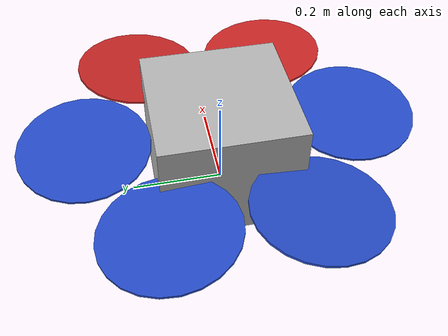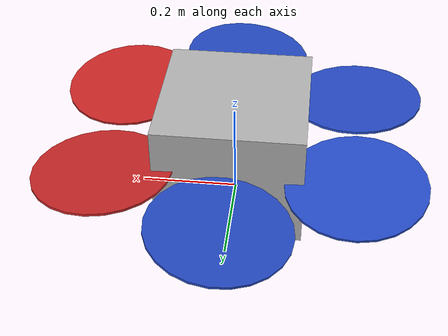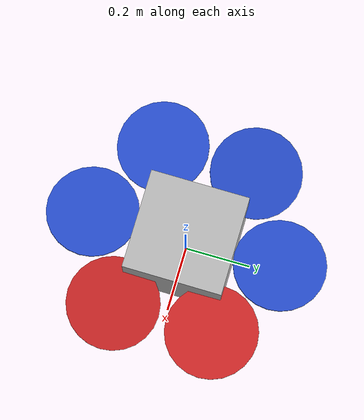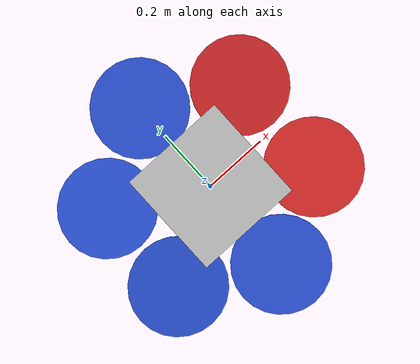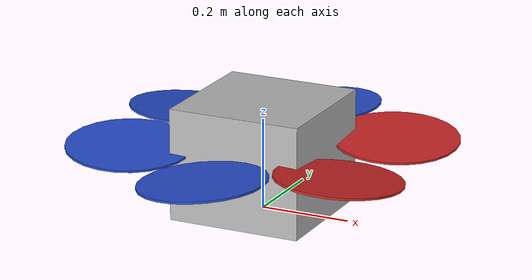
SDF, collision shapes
<?xml version="1.0"?>
<sdf version="1.6">
    <model name="X4">
        <pose>0 0 0.121078 0 0 0</pose>
        <link name="base_link">
            <pose frame="">0 0 0 0 -0 0</pose>
            <inertial>
                <pose frame="">0 0 0 0 -0 0</pose>
                <mass>3.42</mass>
                <inertia>
                    <ixx>0.075</ixx>
                    <ixy>0</ixy>
                    <ixz>0</ixz>
                    <iyy>0.075</iyy>
                    <iyz>0</iyz>
                    <izz>0.148916</izz>
                </inertia>
            </inertial>
            <collision name="base_link_inertia_collision">
                <pose frame="">0 0 0 0 -0 0</pose>
                <geometry>
                    <box>
                        <size>0.3 0.3 0.25</size>
                    </box>
                </geometry>
            </collision>
            <visual name="base_link_inertia_visual">
                <pose frame="">0 0 0 0 -0 0</pose>
                <geometry>
                    <mesh>
                        <scale>1 1 1</scale>
                        <uri>meshes/x4.dae</uri>
                    </mesh>
                </geometry>
            </visual>
            <visual name="marker_visual_1">
                <pose frame="">-0.1 0 0.077 0 -0.1 0</pose>
                <geometry>
                    <mesh>
                        <scale>1 1 1</scale>
                        <uri>meshes/led.dae</uri>
                    </mesh>
                </geometry>
            </visual>
            <visual name="marker_visual_2">
                <pose frame="">-0.09 0.059 0.059 -0.785397 -0 0.2</pose>
                <geometry>
                    <mesh>
                        <scale>1 1 1</scale>
                        <uri>meshes/led.dae</uri>
                    </mesh>
                </geometry>
            </visual>
            <visual name="marker_visual_3">
                <pose frame="">-0.09 -0.059 0.059 0.785397 -0 -0.2</pose>
                <geometry>
                    <mesh>
                        <scale>1 1 1</scale>
                        <uri>meshes/led.dae</uri>
                    </mesh>
                </geometry>
            </visual>
            <visual name="downward_flashlight_visual">
                <pose frame="">-0.043704 0 0.102914 -0.2 0.000158 -1.57002</pose>
                <geometry>
                    <mesh>
                        <scale>0.01 0.01 0.01</scale>
                        <uri>meshes/spotlight.dae</uri>
                    </mesh>
                </geometry>
            </visual>
            <visual name="left_flashlight_visual">
                <pose frame="">-0.071985 0.090826 0.066102 0.06 -4.8e-05 -1.27</pose>
                <geometry>
                    <mesh>
                        <scale>0.01 0.01 0.01</scale>
                        <uri>meshes/spotlight.dae</uri>
                    </mesh>
                </geometry>
            </visual>
            <visual name="right_flashlight_visual">
                <pose frame="">-0.071985 -0.090826 0.066102 0.06 -4.8e-05 -1.87</pose>
                <geometry>
                    <mesh>
                        <scale>0.01 0.01 0.01</scale>
                        <uri>meshes/spotlight.dae</uri>
                    </mesh>
                </geometry>
            </visual>
            <light name="right_light_source" type="spot">
                <pose frame="">-0.0 -0.11 0.07 3.131592653589795 -1.5107899999999999 2.841592653589791</pose>
                <attenuation>
                    <range>15</range>
                    <linear>0</linear>
                    <constant>0.1</constant>
                    <quadratic>0.01</quadratic>
                </attenuation>
                <diffuse>0.8 0.8 0.5 1</diffuse>
                <specular>0.8 0.8 0.5 1</specular>
                <spot>
                    <inner_angle>1</inner_angle>
                    <outer_angle>1.1</outer_angle>
                    <falloff>1</falloff>
                </spot>
                <direction>0 0 -1</direction>
                <cast_shadows>1</cast_shadows>
            </light>
            <light name="downward_flashlight_source" type="spot">
                <pose frame="">0.03 0 0.09 -0.01 -1.3708026535897933 0</pose>
                <attenuation>
                    <range>15</range>
                    <linear>0</linear>
                    <constant>0.1</constant>
                    <quadratic>0.01</quadratic>
                </attenuation>
                <diffuse>0.8 0.8 0.5 1</diffuse>
                <specular>0.8 0.8 0.5 1</specular>
                <spot>
                    <inner_angle>1</inner_angle>
                    <outer_angle>1.1</outer_angle>
                    <falloff>1</falloff>
                </spot>
                <direction>0 0 -1</direction>
                <cast_shadows>1</cast_shadows>
            </light>
            <light name="left_flashlight_source" type="spot">
                <pose frame="">-0.0 0.11 0.07 3.131592653589795 -1.5107899999999999 -2.841592653589791</pose>
                <attenuation>
                    <range>15</range>
                    <linear>0</linear>
                    <constant>0.1</constant>
                    <quadratic>0.01</quadratic>
                </attenuation>
                <diffuse>0.8 0.8 0.5 1</diffuse>
                <specular>0.8 0.8 0.5 1</specular>
                <spot>
                    <inner_angle>1</inner_angle>
                    <outer_angle>1.1</outer_angle>
                    <falloff>1</falloff>
                </spot>
                <direction>0 0 -1</direction>
                <cast_shadows>1</cast_shadows>
            </light>
            <sensor name="imu_sensor" type="imu">
                <always_on>1</always_on>
                <update_rate>250</update_rate>
                <imu>
                    <enable_orientation>0</enable_orientation>
                    <angular_velocity>
                        <x>
                            <noise type="gaussian">
                                <mean>0</mean>
                                <stddev>0.009</stddev>
                                <bias_mean>0.00075</bias_mean>
                                <bias_stddev>0.005</bias_stddev>
                                <dynamic_bias_stddev>0.00002</dynamic_bias_stddev>
                                <dynamic_bias_correlation_time>400.0</dynamic_bias_correlation_time>
                                <precision>0.00025</precision>
                            </noise>
                        </x>
                        <y>
                            <noise type="gaussian">
                                <mean>0</mean>
                                <stddev>0.009</stddev>
                                <bias_mean>0.00075</bias_mean>
                                <bias_stddev>0.005</bias_stddev>
                                <dynamic_bias_stddev>0.00002</dynamic_bias_stddev>
                                <dynamic_bias_correlation_time>400.0</dynamic_bias_correlation_time>
                                <precision>0.00025</precision>
                            </noise>
                        </y>
                        <z>
                            <noise type="gaussian">
                                <mean>0</mean>
                                <stddev>0.009</stddev>
                                <bias_mean>0.00075</bias_mean>
                                <bias_stddev>0.005</bias_stddev>
                                <dynamic_bias_stddev>0.00002</dynamic_bias_stddev>
                                <dynamic_bias_correlation_time>400.0</dynamic_bias_correlation_time>
                                <precision>0.00025</precision>
                            </noise>
                        </z>
                    </angular_velocity>
                    <linear_acceleration>
                        <x>
                            <noise type="gaussian">
                                <mean>0</mean>
                                <stddev>0.021</stddev>
                                <bias_mean>0.05</bias_mean>
                                <bias_stddev>0.0075</bias_stddev>
                                <dynamic_bias_stddev>0.000375</dynamic_bias_stddev>
                                <dynamic_bias_correlation_time>175.0</dynamic_bias_correlation_time>
                                <precision>0.005</precision>
                            </noise>
                        </x>
                        <y>
                            <noise type="gaussian">
                                <mean>0</mean>
                                <stddev>0.021</stddev>
                                <bias_mean>0.05</bias_mean>
                                <bias_stddev>0.0075</bias_stddev>
                                <dynamic_bias_stddev>0.000375</dynamic_bias_stddev>
                                <dynamic_bias_correlation_time>175.0</dynamic_bias_correlation_time>
                                <precision>0.005</precision>
                            </noise>
                        </y>
                        <z>
                            <noise type="gaussian">
                                <mean>0</mean>
                                <stddev>0.021</stddev>
                                <bias_mean>0.05</bias_mean>
                                <bias_stddev>0.0075</bias_stddev>
                                <dynamic_bias_stddev>0.000375</dynamic_bias_stddev>
                                <dynamic_bias_correlation_time>175.0</dynamic_bias_correlation_time>
                                <precision>0.005</precision>
                            </noise>
                        </z>
                    </linear_acceleration>
                </imu>
            </sensor>
            <sensor name="air_pressure" type="air_pressure">
                <always_on>1</always_on>
                <update_rate>20</update_rate>
                <air_pressure>
                    <reference_altitude>0</reference_altitude>
                    <noise type="gaussian">
                        <mean>0.00000008</mean>
                    </noise>
                </air_pressure>
            </sensor>
            <sensor name="magnetometer" type="magnetometer">
                <always_on>1</always_on>
                <update_rate>20</update_rate>
                <magnetometer>
                    <x>
                        <noise type="gaussian">
                            <mean>0.000000080</mean>
                            <bias_mean>0.000000400</bias_mean>
                        </noise>
                    </x>
                    <y>
                        <noise type="gaussian">
                            <mean>0.000000080</mean>
                            <bias_mean>0.000000400</bias_mean>
                        </noise>
                    </y>
                    <z>
                        <noise type="gaussian">
                            <mean>0.000000080</mean>
                            <bias_mean>0.000000400</bias_mean>
                        </noise>
                    </z>
                </magnetometer>
            </sensor>
            <visual name="camera_mount_base_visual">
                <pose>0.05 0 -0.030 0 0.0 0</pose>
                <geometry>
                    <box>
                        <size>0.06 0.06 0.006</size>
                    </box>
                </geometry>
            </visual>
            <visual name="camera_mount_arm_visual">
                <pose>0.08 0 -0.040 0 0.0 0</pose>
                <geometry>
                    <cylinder>
                        <radius>0.005</radius>
                        <length>0.08</length>
                    </cylinder>
                </geometry>
            </visual>
            <visual name="camera_mount_arm2_visual">
                <pose>0.08 0 -0.08 0 1.57 0</pose>
                <geometry>
                    <cylinder>
                        <radius>0.01</radius>
                        <length>0.025</length>
                    </cylinder>
                </geometry>
            </visual>
            <visual name="camera_visual">
                <pose>0.1 0 -0.08 0 0 0</pose>
                <geometry>
                    <box>
                        <size>0.02 0.025 0.025</size>
                    </box>
                </geometry>
            </visual>
            <sensor name="camera_front" type="camera">
                <pose>0.1 0 -0.08 0 0 0</pose>
                <always_on>1</always_on>
                <update_rate>20</update_rate>
                <camera name="camera_front">
                    <horizontal_fov>2</horizontal_fov>
                    <lens>
                        <intrinsics>
                            <!-- fx = fy = width / ( 2 * tan (hfov / 2 ) ) -->
                            <fx>1108.5</fx>
                            <fy>1108.5</fy>
                            <!-- cx = ( width + 1 ) / 2 -->
                            <cx>640.5</cx>
                            <!-- cy = ( height + 1 ) / 2 -->
                            <cy>480.5</cy>
                            <s>0</s>
                        </intrinsics>
                    </lens>
                    <distortion>
                        <k1>0.0</k1>
                        <k2>0.0</k2>
                        <k3>0.0</k3>
                        <p1>0.0</p1>
                        <p2>0.0</p2>
                        <center>0.5 0.5</center>
                    </distortion>
                    <image>
                        <width>1280</width>
                        <height>960</height>
                        <format>R8G8B8</format>
                    </image>
                    <clip>
                        <near>0.02</near>
                        <far>300</far>
                    </clip>
                    <noise>
                        <type>gaussian</type>
                        <mean>0</mean>
                        <stddev>0.007</stddev>
                    </noise>
                </camera>
            </sensor>
        </link>
        <link name="rotor_0">
            <pose frame="">0.247 0.1506 0.028 0.087267 0 0.523599</pose>
            <inertial>
                <pose frame="">0 0 0 0 -0 0</pose>
                <mass>0.005</mass>
                <inertia>
                    <ixx>9.75e-07</ixx>
                    <ixy>0</ixy>
                    <ixz>0</ixz>
                    <iyy>8.13545e-05</iyy>
                    <iyz>0</iyz>
                    <izz>8.22545e-05</izz>
                </inertia>
            </inertial>
            <collision name="rotor_0_collision">
                <pose frame="">0 0 0 0 -0 0</pose>
                <geometry>
                    <cylinder>
                        <length>0.005</length>
                        <radius>0.1397</radius>
                    </cylinder>
                </geometry>
                <surface>
                    <contact>
                        <ode/>
                    </contact>
                    <friction>
                        <ode/>
                    </friction>
                </surface>
            </collision>
            <visual name="rotor_0_visual">
                <pose frame="">0 0 0 0 -0 0</pose>
                <geometry>
                    <mesh>
                        <scale>1 1 1</scale>
                        <uri>meshes/neo11_propeller_ccw.dae</uri>
                    </mesh>
                </geometry>
                <material>
                    <diffuse>1 0 0 1</diffuse>
                    <script>
                        <name>Gazebo/Red</name>
                        <uri>file://media/materials/scripts/gazebo.material</uri>
                    </script>
                </material>
                <cast_shadows>0</cast_shadows>
            </visual>
            <gravity>1</gravity>
            <velocity_decay/>
        </link>
        <joint name="rotor_0_joint" type="revolute">
            <child>rotor_0</child>
            <parent>base_link</parent>
            <axis>
                <xyz>0.043578 -0.075479 0.996195</xyz>
                <limit>
                    <lower>-1e+16</lower>
                    <upper>1e+16</upper>
                </limit>
                <dynamics>
                    <spring_reference>0</spring_reference>
                    <spring_stiffness>0</spring_stiffness>
                </dynamics>
                <use_parent_model_frame>1</use_parent_model_frame>
            </axis>
        </joint>
        <link name="rotor_1">
            <pose frame="">-0.00067 0.28929 0.028 0 -0.087267 0</pose>
            <inertial>
                <pose frame="">0 0 0 0 -0 0</pose>
                <mass>0.005</mass>
                <inertia>
                    <ixx>9.75e-07</ixx>
                    <ixy>0</ixy>
                    <ixz>0</ixz>
                    <iyy>8.13545e-05</iyy>
                    <iyz>0</iyz>
                    <izz>8.22545e-05</izz>
                </inertia>
            </inertial>
            <collision name="rotor_1_collision">
                <pose frame="">0 0 0 0 -0 0</pose>
                <geometry>
                    <cylinder>
                        <length>0.005</length>
                        <radius>0.1397</radius>
                    </cylinder>
                </geometry>
                <surface>
                    <contact>
                        <ode/>
                    </contact>
                    <friction>
                        <ode/>
                    </friction>
                </surface>
            </collision>
            <visual name="rotor_1_visual">
                <pose frame="">0 0 0 0 -0 0</pose>
                <geometry>
                    <mesh>
                        <scale>1 1 1</scale>
                        <uri>meshes/neo11_propeller_cw.dae</uri>
                    </mesh>
                </geometry>
                <material>
                    <diffuse>0 0 1 1</diffuse>
                    <script>
                        <name>Gazebo/Blue</name>
                        <uri>file://media/materials/scripts/gazebo.material</uri>
                    </script>
                </material>
                <cast_shadows>0</cast_shadows>
            </visual>
            <gravity>1</gravity>
            <velocity_decay/>
        </link>
        <joint name="rotor_1_joint" type="revolute">
            <child>rotor_1</child>
            <parent>base_link</parent>
            <axis>
                <xyz>-0.087156 0 0.996195</xyz>
                <limit>
                    <lower>-1e+16</lower>
                    <upper>1e+16</upper>
                </limit>
                <dynamics>
                    <spring_reference>0</spring_reference>
                    <spring_stiffness>0</spring_stiffness>
                </dynamics>
                <use_parent_model_frame>1</use_parent_model_frame>
            </axis>
        </joint>
        <link name="rotor_2">
            <pose frame="">-0.2501 0.1454 0.028 0.087267 -0 2.61799</pose>
            <inertial>
                <pose frame="">0 0 0 0 -0 0</pose>
                <mass>0.005</mass>
                <inertia>
                    <ixx>9.75e-07</ixx>
                    <ixy>0</ixy>
                    <ixz>0</ixz>
                    <iyy>8.13545e-05</iyy>
                    <iyz>0</iyz>
                    <izz>8.22545e-05</izz>
                </inertia>
            </inertial>
            <collision name="rotor_2_collision">
                <pose frame="">0 0 0 0 -0 0</pose>
                <geometry>
                    <cylinder>
                        <length>0.005</length>
                        <radius>0.1397</radius>
                    </cylinder>
                </geometry>
                <surface>
                    <contact>
                        <ode/>
                    </contact>
                    <friction>
                        <ode/>
                    </friction>
                </surface>
            </collision>
            <visual name="rotor_2_visual">
                <pose frame="">0 0 0 0 -0 0</pose>
                <geometry>
                    <mesh>
                        <scale>1 1 1</scale>
                        <uri>meshes/neo11_propeller_ccw.dae</uri>
                    </mesh>
                </geometry>
                <material>
                    <diffuse>0 0 1 1</diffuse>
                    <script>
                        <name>Gazebo/Blue</name>
                        <uri>file://media/materials/scripts/gazebo.material</uri>
                    </script>
                </material>
                <cast_shadows>0</cast_shadows>
            </visual>
            <gravity>1</gravity>
            <velocity_decay/>
        </link>
        <joint name="rotor_2_joint" type="revolute">
            <child>rotor_2</child>
            <parent>base_link</parent>
            <axis>
                <xyz>0.043578 0.075479 0.996195</xyz>
                <limit>
                    <lower>-1e+16</lower>
                    <upper>1e+16</upper>
                </limit>
                <dynamics>
                    <spring_reference>0</spring_reference>
                    <spring_stiffness>0</spring_stiffness>
                </dynamics>
                <use_parent_model_frame>1</use_parent_model_frame>
            </axis>
        </joint>
        <link name="rotor_3">
            <pose frame="">-0.2501 -0.1454 0.028 -0.087267 -0 -2.61799</pose>
            <inertial>
                <pose frame="">0 0 0 0 -0 0</pose>
                <mass>0.005</mass>
                <inertia>
                    <ixx>9.75e-07</ixx>
                    <ixy>0</ixy>
                    <ixz>0</ixz>
                    <iyy>8.13545e-05</iyy>
                    <iyz>0</iyz>
                    <izz>8.22545e-05</izz>
                </inertia>
            </inertial>
            <collision name="rotor_3_collision">
                <pose frame="">0 0 0 0 -0 0</pose>
                <geometry>
                    <cylinder>
                        <length>0.005</length>
                        <radius>0.1397</radius>
                    </cylinder>
                </geometry>
                <surface>
                    <contact>
                        <ode/>
                    </contact>
                    <friction>
                        <ode/>
                    </friction>
                </surface>
            </collision>
            <visual name="rotor_3_visual">
                <pose frame="">0 0 0 0 -0 0</pose>
                <geometry>
                    <mesh>
                        <scale>1 1 1</scale>
                        <uri>meshes/neo11_propeller_cw.dae</uri>
                    </mesh>
                </geometry>
                <material>
                    <diffuse>0 0 1 1</diffuse>
                    <script>
                        <name>Gazebo/Blue</name>
                        <uri>file://media/materials/scripts/gazebo.material</uri>
                    </script>
                </material>
                <cast_shadows>0</cast_shadows>
            </visual>
            <gravity>1</gravity>
            <velocity_decay/>
        </link>
        <joint name="rotor_3_joint" type="revolute">
            <child>rotor_3</child>
            <parent>base_link</parent>
            <axis>
                <xyz>0.043578 -0.075479 0.996195</xyz>
                <limit>
                    <lower>-1e+16</lower>
                    <upper>1e+16</upper>
                </limit>
                <dynamics>
                    <spring_reference>0</spring_reference>
                    <spring_stiffness>0</spring_stiffness>
                </dynamics>
                <use_parent_model_frame>1</use_parent_model_frame>
            </axis>
        </joint>
        <link name="rotor_4">
            <pose frame="">-0.00067 -0.28929 0.028 -0 0.087267 -3.14159</pose>
            <inertial>
                <pose frame="">0 0 0 0 -0 0</pose>
                <mass>0.005</mass>
                <inertia>
                    <ixx>9.75e-07</ixx>
                    <ixy>0</ixy>
                    <ixz>0</ixz>
                    <iyy>8.13545e-05</iyy>
                    <iyz>0</iyz>
                    <izz>8.22545e-05</izz>
                </inertia>
            </inertial>
            <collision name="rotor_4_collision">
                <pose frame="">0 0 0 0 -0 0</pose>
                <geometry>
                    <cylinder>
                        <length>0.005</length>
                        <radius>0.1397</radius>
                    </cylinder>
                </geometry>
                <surface>
                    <contact>
                        <ode/>
                    </contact>
                    <friction>
                        <ode/>
                    </friction>
                </surface>
            </collision>
            <visual name="rotor_4_visual">
                <pose frame="">0 0 0 0 -0 0</pose>
                <geometry>
                    <mesh>
                        <scale>1 1 1</scale>
                        <uri>meshes/neo11_propeller_ccw.dae</uri>
                    </mesh>
                </geometry>
                <material>
                    <diffuse>0 0 1 1</diffuse>
                    <script>
                        <name>Gazebo/Blue</name>
                        <uri>file://media/materials/scripts/gazebo.material</uri>
                    </script>
                </material>
                <cast_shadows>0</cast_shadows>
            </visual>
            <gravity>1</gravity>
            <velocity_decay/>
        </link>
        <joint name="rotor_4_joint" type="revolute">
            <child>rotor_4</child>
            <parent>base_link</parent>
            <axis>
                <xyz>-0.087156 -0 0.996195</xyz>
                <limit>
                    <lower>-1e+16</lower>
                    <upper>1e+16</upper>
                </limit>
                <dynamics>
                    <spring_reference>0</spring_reference>
                    <spring_stiffness>0</spring_stiffness>
                </dynamics>
                <use_parent_model_frame>1</use_parent_model_frame>
            </axis>
        </joint>
        <link name="rotor_5">
            <pose frame="">0.247 -0.1506 0.028 -0.087267 0 -0.523599</pose>
            <inertial>
                <pose frame="">0 0 0 0 -0 0</pose>
                <mass>0.005</mass>
                <inertia>
                    <ixx>9.75e-07</ixx>
                    <ixy>0</ixy>
                    <ixz>0</ixz>
                    <iyy>8.13545e-05</iyy>
                    <iyz>0</iyz>
                    <izz>8.22545e-05</izz>
                </inertia>
            </inertial>
            <collision name="rotor_5_collision">
                <pose frame="">0 0 0 0 -0 0</pose>
                <geometry>
                    <cylinder>
                        <length>0.005</length>
                        <radius>0.1397</radius>
                    </cylinder>
                </geometry>
                <surface>
                    <contact>
                        <ode/>
                    </contact>
                    <friction>
                        <ode/>
                    </friction>
                </surface>
            </collision>
            <visual name="rotor_5_visual">
                <pose frame="">0 0 0 0 -0 0</pose>
                <geometry>
                    <mesh>
                        <scale>1 1 1</scale>
                        <uri>meshes/neo11_propeller_cw.dae</uri>
                    </mesh>
                </geometry>
                <material>
                    <diffuse>1 0 0 1</diffuse>
                    <script>
                        <name>Gazebo/Red</name>
                        <uri>file://media/materials/scripts/gazebo.material</uri>
                    </script>
                </material>
                <cast_shadows>0</cast_shadows>
            </visual>
            <gravity>1</gravity>
            <velocity_decay/>
        </link>
        <joint name="rotor_5_joint" type="revolute">
            <child>rotor_5</child>
            <parent>base_link</parent>
            <axis>
                <xyz>0.043578 0.075479 0.996195</xyz>
                <limit>
                    <lower>-1e+16</lower>
                    <upper>1e+16</upper>
                </limit>
                <dynamics>
                    <spring_reference>0</spring_reference>
                    <spring_stiffness>0</spring_stiffness>
                </dynamics>
                <use_parent_model_frame>1</use_parent_model_frame>
            </axis>
        </joint>

        <plugin filename="ignition-gazebo-multicopter-motor-model-system"
                name="gz::sim::systems::MulticopterMotorModel">
          <robotNamespace>simple_drone</robotNamespace>
          <jointName>rotor_0_joint</jointName>
          <linkName>rotor_0</linkName>
          <turningDirection>ccw</turningDirection>
          <timeConstantUp>0.0182</timeConstantUp>
          <timeConstantDown>0.0182</timeConstantDown>
          <maxRotVelocity>1000.0</maxRotVelocity>
          <motorConstant>1.269e-05</motorConstant>
          <momentConstant>0.016754</momentConstant>
          <commandSubTopic>command/motor_speed</commandSubTopic>
          <motorNumber>0</motorNumber>
          <rotorDragCoefficient>0</rotorDragCoefficient>
          <rollingMomentCoefficient>0</rollingMomentCoefficient>
          <motorSpeedPubTopic>motor_speed/0</motorSpeedPubTopic>
          <rotorVelocitySlowdownSim>2</rotorVelocitySlowdownSim>
          <motorType>velocity</motorType>
        </plugin>
        <plugin filename="ignition-gazebo-multicopter-motor-model-system"
                name="gz::sim::systems::MulticopterMotorModel">
          <robotNamespace>simple_drone</robotNamespace>
          <jointName>rotor_1_joint</jointName>
          <linkName>rotor_1</linkName>
          <turningDirection>cw</turningDirection>
          <timeConstantUp>0.0182</timeConstantUp>
          <timeConstantDown>0.0182</timeConstantDown>
          <maxRotVelocity>1000.0</maxRotVelocity>
          <motorConstant>1.269e-05</motorConstant>
          <momentConstant>0.016754</momentConstant>
          <commandSubTopic>command/motor_speed</commandSubTopic>
          <motorNumber>1</motorNumber>
          <rotorDragCoefficient>0</rotorDragCoefficient>
          <rollingMomentCoefficient>0</rollingMomentCoefficient>
          <motorSpeedPubTopic>motor_speed/1</motorSpeedPubTopic>
          <rotorVelocitySlowdownSim>2</rotorVelocitySlowdownSim>
          <motorType>velocity</motorType>
        </plugin>
        <plugin filename="ignition-gazebo-multicopter-motor-model-system"
                name="gz::sim::systems::MulticopterMotorModel">
          <robotNamespace>simple_drone</robotNamespace>
          <jointName>rotor_2_joint</jointName>
          <linkName>rotor_2</linkName>
          <turningDirection>ccw</turningDirection>
          <timeConstantUp>0.0182</timeConstantUp>
          <timeConstantDown>0.0182</timeConstantDown>
          <maxRotVelocity>1000.0</maxRotVelocity>
          <motorConstant>1.269e-05</motorConstant>
          <momentConstant>0.016754</momentConstant>
          <commandSubTopic>command/motor_speed</commandSubTopic>
          <motorNumber>2</motorNumber>
          <rotorDragCoefficient>0</rotorDragCoefficient>
          <rollingMomentCoefficient>0</rollingMomentCoefficient>
          <motorSpeedPubTopic>motor_speed/2</motorSpeedPubTopic>
          <rotorVelocitySlowdownSim>2</rotorVelocitySlowdownSim>
          <motorType>velocity</motorType>
        </plugin>
        <plugin filename="ignition-gazebo-multicopter-motor-model-system"
                name="gz::sim::systems::MulticopterMotorModel">
          <robotNamespace>simple_drone</robotNamespace>
          <jointName>rotor_3_joint</jointName>
          <linkName>rotor_3</linkName>
          <turningDirection>cw</turningDirection>
          <timeConstantUp>0.0182</timeConstantUp>
          <timeConstantDown>0.0182</timeConstantDown>
          <maxRotVelocity>1000.0</maxRotVelocity>
          <motorConstant>1.269e-05</motorConstant>
          <momentConstant>0.016754</momentConstant>
          <commandSubTopic>command/motor_speed</commandSubTopic>
          <motorNumber>3</motorNumber>
          <rotorDragCoefficient>0</rotorDragCoefficient>
          <rollingMomentCoefficient>0</rollingMomentCoefficient>
          <motorSpeedPubTopic>motor_speed/3</motorSpeedPubTopic>
          <rotorVelocitySlowdownSim>2</rotorVelocitySlowdownSim>
          <motorType>velocity</motorType>
        </plugin>
        <plugin filename="ignition-gazebo-multicopter-motor-model-system"
                name="gz::sim::systems::MulticopterMotorModel">
          <robotNamespace>simple_drone</robotNamespace>
          <jointName>rotor_4_joint</jointName>
          <linkName>rotor_4</linkName>
          <turningDirection>ccw</turningDirection>
          <timeConstantUp>0.0182</timeConstantUp>
          <timeConstantDown>0.0182</timeConstantDown>
          <maxRotVelocity>1000.0</maxRotVelocity>
          <motorConstant>1.269e-05</motorConstant>
          <momentConstant>0.016754</momentConstant>
          <commandSubTopic>command/motor_speed</commandSubTopic>
          <motorNumber>4</motorNumber>
          <rotorDragCoefficient>0</rotorDragCoefficient>
          <rollingMomentCoefficient>0</rollingMomentCoefficient>
          <motorSpeedPubTopic>motor_speed/4</motorSpeedPubTopic>
          <rotorVelocitySlowdownSim>2</rotorVelocitySlowdownSim>
          <motorType>velocity</motorType>
        </plugin>
        <plugin filename="ignition-gazebo-multicopter-motor-model-system"
                name="gz::sim::systems::MulticopterMotorModel">
          <robotNamespace>simple_drone</robotNamespace>
          <jointName>rotor_5_joint</jointName>
          <linkName>rotor_5</linkName>
          <turningDirection>cw</turningDirection>
          <timeConstantUp>0.0182</timeConstantUp>
          <timeConstantDown>0.0182</timeConstantDown>
          <maxRotVelocity>1000.0</maxRotVelocity>
          <motorConstant>1.269e-05</motorConstant>
          <momentConstant>0.016754</momentConstant>
          <commandSubTopic>command/motor_speed</commandSubTopic>
          <motorNumber>5</motorNumber>
          <rotorDragCoefficient>0</rotorDragCoefficient>
          <rollingMomentCoefficient>0</rollingMomentCoefficient>
          <motorSpeedPubTopic>motor_speed/5</motorSpeedPubTopic>
          <rotorVelocitySlowdownSim>2</rotorVelocitySlowdownSim>
          <motorType>velocity</motorType>
        </plugin>

        <plugin filename="ignition-gazebo-multicopter-control-system"
                name="gz::sim::systems::MulticopterVelocityControl">
          <robotNamespace>simple_drone</robotNamespace>
          <commandSubTopic>gazebo/command/twist</commandSubTopic>
          <enableSubTopic>enable</enableSubTopic>
          <comLinkName>base_link</comLinkName>
          <velocityGain>6 6 10</velocityGain>
          <attitudeGain>4 4 2</attitudeGain>
          <angularRateGain>0.7 0.7 0.7</angularRateGain>
          <maximumLinearAcceleration>2.5 2.5 2.5</maximumLinearAcceleration>
          <maximumLinearVelocity>5 5 5</maximumLinearVelocity>
          <maximumAngularVelocity>3 3 3</maximumAngularVelocity>
          <rotorConfiguration>
            <rotor><jointName>rotor_0_joint</jointName><forceConstant>1.269e-05</forceConstant><momentConstant>1.6754e-2</momentConstant><direction>1</direction></rotor>
            <rotor><jointName>rotor_1_joint</jointName><forceConstant>1.269e-05</forceConstant><momentConstant>1.6754e-2</momentConstant><direction>-1</direction></rotor>
            <rotor><jointName>rotor_2_joint</jointName><forceConstant>1.269e-05</forceConstant><momentConstant>1.6754e-2</momentConstant><direction>1</direction></rotor>
            <rotor><jointName>rotor_3_joint</jointName><forceConstant>1.269e-05</forceConstant><momentConstant>1.6754e-2</momentConstant><direction>-1</direction></rotor>
            <rotor><jointName>rotor_4_joint</jointName><forceConstant>1.269e-05</forceConstant><momentConstant>1.6754e-2</momentConstant><direction>1</direction></rotor>
            <rotor><jointName>rotor_5_joint</jointName><forceConstant>1.269e-05</forceConstant><momentConstant>1.6754e-2</momentConstant><direction>-1</direction></rotor>
          </rotorConfiguration>
        </plugin>

        <plugin filename="ignition-gazebo-odometry-publisher-system"
                name="ignition::gazebo::systems::OdometryPublisher">
          <dimensions>3</dimensions>
          <odom_frame>world</odom_frame>
          <robot_base_frame>simple_drone</robot_base_frame>
        </plugin>

        <plugin filename="ignition-gazebo-pose-publisher-system"
                name="gz::sim::systems::PosePublisher">
          <publish_link_pose>true</publish_link_pose>
          <publish_collision_pose>false</publish_collision_pose>
          <publish_visual_pose>false</publish_visual_pose>
          <publish_nested_model_pose>false</publish_nested_model_pose>
        </plugin>
    </model>
</sdf>
